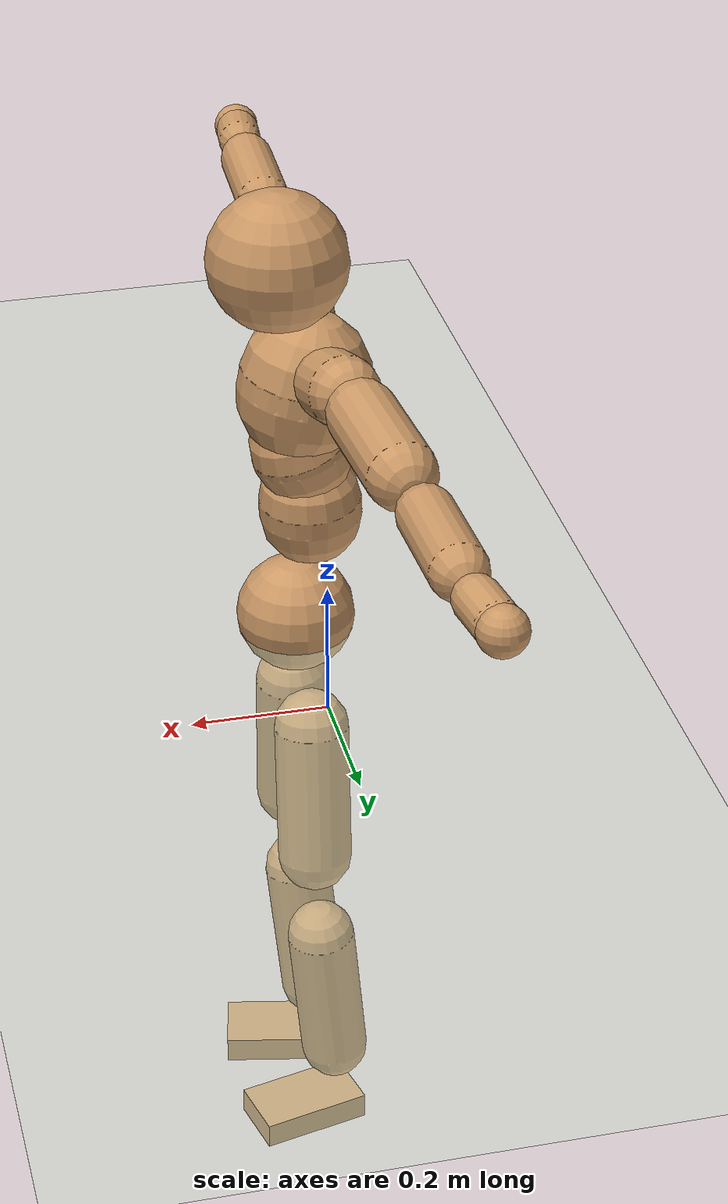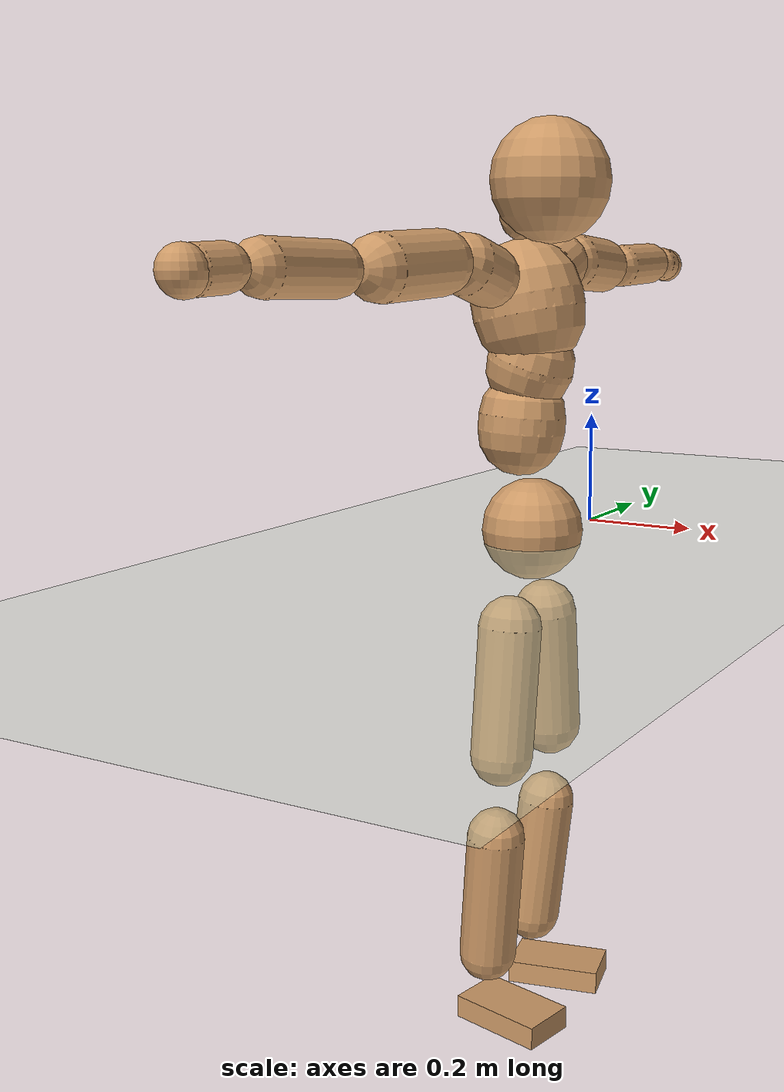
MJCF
<mujoco model="humanoid">
  <compiler coordinate="local"/>
  <default>
    <joint damping="0.0" armature="0.01" stiffness="0.0" limited="true"/>
    <geom conaffinity="1" condim="3" contype="7" margin="0.001" rgba="0.8 0.6 .4 1"/>
  </default>
  <asset>
    <texture type="skybox" builtin="gradient" rgb1=".4 .5 .6" rgb2="0 0 0" width="100" height="100"/>
    <texture builtin="flat" height="1278" mark="cross" markrgb="1 1 1" name="texgeom" random="0.01" rgb1="0.8 0.6 0.4" rgb2="0.8 0.6 0.4" type="cube" width="127"/>
    <texture builtin="checker" height="100" name="texplane" rgb1="0 0 0" rgb2="0.8 0.8 0.8" type="2d" width="100"/>
    <material name="MatPlane" reflectance="0.5" shininess="1" specular="1" texrepeat="60 60" texture="texplane"/>
    <material name="geom" texture="texgeom" texuniform="true"/>
  </asset>
  <worldbody>
    <light cutoff="100" diffuse="1 1 1" dir="-0 0 -1.3" directional="true" exponent="1" pos="0 0 1.3" specular=".1 .1 .1"/>
    <geom conaffinity="1" condim="3" name="floor" pos="0 0 0" rgba="0.8 0.9 0.8 1" size="100 100 .2" type="plane" material="MatPlane"/>
    <body name="Pelvis" pos="-0.0039 -0.2325 0.0214">
      <freejoint name="Pelvis"/>
      <geom type="sphere" contype="1" conaffinity="1" density="500" size="0.0894" pos="0.0000 0.0000 0.0000" name="Pelvis"/>
      <body name="L_Hip" pos="-0.0084 0.0605 -0.0899">
        <joint name="L_Hip_x" type="hinge" pos="0 0 0" axis="1 0 0" stiffness="800" damping="80" armature="0.02" range="-180.0000 180.0000"/>
        <joint name="L_Hip_y" type="hinge" pos="0 0 0" axis="0 1 0" stiffness="800" damping="80" armature="0.02" range="-180.0000 180.0000"/>
        <joint name="L_Hip_z" type="hinge" pos="0 0 0" axis="0 0 1" stiffness="800" damping="80" armature="0.02" range="-180.0000 180.0000"/>
        <geom type="capsule" contype="1" conaffinity="1" density="500" fromto="0.0002 0.0077 -0.0750 0.0008 0.0306 -0.3000" size="0.0571" name="L_Hip"/>
        <body name="L_Knee" pos="0.0009 0.0383 -0.375">
          <joint name="L_Knee_x" type="hinge" pos="0 0 0" axis="1 0 0" stiffness="800" damping="80" armature="0.02" range="-180.0000 180.0000"/>
          <joint name="L_Knee_y" type="hinge" pos="0 0 0" axis="0 1 0" stiffness="800" damping="80" armature="0.02" range="-180.0000 180.0000"/>
          <joint name="L_Knee_z" type="hinge" pos="0 0 0" axis="0 0 1" stiffness="800" damping="80" armature="0.02" range="-180.0000 180.0000"/>
          <geom type="capsule" contype="1" conaffinity="1" density="500" fromto="-0.0080 -0.0032 -0.0797 -0.0320 -0.0129 -0.3189" size="0.0522" name="L_Knee"/>
          <body name="L_Ankle" pos="-0.04 -0.0161 -0.3986">
            <joint name="L_Ankle_x" type="hinge" pos="0 0 0" axis="1 0 0" stiffness="800" damping="80" armature="0.02" range="-180.0000 180.0000"/>
            <joint name="L_Ankle_y" type="hinge" pos="0 0 0" axis="0 1 0" stiffness="800" damping="80" armature="0.02" range="-180.0000 180.0000"/>
            <joint name="L_Ankle_z" type="hinge" pos="0 0 0" axis="0 0 1" stiffness="800" damping="80" armature="0.02" range="-180.0000 180.0000"/>
            <geom type="box" contype="1" conaffinity="1" density="500" pos="0.0610 0.0139 -0.0274" size="0.0862 0.0495 0.021" quat="0.9937 0.0000 0.0000 0.1120" name="L_Ankle"/>
            <body name="L_Toe" pos="0.122 0.0279 -0.0548">
              <joint name="L_Toe_x" type="hinge" pos="0 0 0" axis="1 0 0" stiffness="500" damping="50" armature="0.02" range="-180.0000 180.0000"/>
              <joint name="L_Toe_y" type="hinge" pos="0 0 0" axis="0 1 0" stiffness="500" damping="50" armature="0.02" range="-180.0000 180.0000"/>
              <joint name="L_Toe_z" type="hinge" pos="0 0 0" axis="0 0 1" stiffness="500" damping="50" armature="0.02" range="-180.0000 180.0000"/>
              <geom type="box" contype="1" conaffinity="1" density="500" pos="0.0000 0.0000 0.0268" size="0.001 0.0024 0.001" quat="0.9930 0.0000 0.0000 0.1179" name="L_Toe"/>
            </body>
          </body>
        </body>
      </body>
      <body name="R_Hip" pos="-0.0068 -0.0595 -0.0886">
        <joint name="R_Hip_x" type="hinge" pos="0 0 0" axis="1 0 0" stiffness="800" damping="80" armature="0.02" range="-180.0000 180.0000"/>
        <joint name="R_Hip_y" type="hinge" pos="0 0 0" axis="0 1 0" stiffness="800" damping="80" armature="0.02" range="-180.0000 180.0000"/>
        <joint name="R_Hip_z" type="hinge" pos="0 0 0" axis="0 0 1" stiffness="800" damping="80" armature="0.02" range="-180.0000 180.0000"/>
        <geom type="capsule" contype="1" conaffinity="1" density="500" fromto="-0.0012 -0.0079 -0.0766 -0.0047 -0.0317 -0.3065" size="0.056" name="R_Hip"/>
        <body name="R_Knee" pos="-0.0059 -0.0396 -0.3831">
          <joint name="R_Knee_x" type="hinge" pos="0 0 0" axis="1 0 0" stiffness="800" damping="80" armature="0.02" range="-180.0000 180.0000"/>
          <joint name="R_Knee_y" type="hinge" pos="0 0 0" axis="0 1 0" stiffness="800" damping="80" armature="0.02" range="-180.0000 180.0000"/>
          <joint name="R_Knee_z" type="hinge" pos="0 0 0" axis="0 0 1" stiffness="800" damping="80" armature="0.02" range="-180.0000 180.0000"/>
          <geom type="capsule" contype="1" conaffinity="1" density="500" fromto="-0.0077 0.0036 -0.0797 -0.0310 0.0144 -0.3188" size="0.0523" name="R_Knee"/>
          <body name="R_Ankle" pos="-0.0387 0.018 -0.3985">
            <joint name="R_Ankle_x" type="hinge" pos="0 0 0" axis="1 0 0" stiffness="800" damping="80" armature="0.02" range="-180.0000 180.0000"/>
            <joint name="R_Ankle_y" type="hinge" pos="0 0 0" axis="0 1 0" stiffness="800" damping="80" armature="0.02" range="-180.0000 180.0000"/>
            <joint name="R_Ankle_z" type="hinge" pos="0 0 0" axis="0 0 1" stiffness="800" damping="80" armature="0.02" range="-180.0000 180.0000"/>
            <geom type="box" contype="1" conaffinity="1" density="500" pos="0.0633 -0.0130 -0.0239" size="0.0886 0.0501 0.021" quat="0.9949 0.0000 0.0000 -0.1012" name="R_Ankle"/>
            <body name="R_Toe" pos="0.1266 -0.026 -0.0479">
              <joint name="R_Toe_x" type="hinge" pos="0 0 0" axis="1 0 0" stiffness="500" damping="50" armature="0.02" range="-180.0000 180.0000"/>
              <joint name="R_Toe_y" type="hinge" pos="0 0 0" axis="0 1 0" stiffness="500" damping="50" armature="0.02" range="-180.0000 180.0000"/>
              <joint name="R_Toe_z" type="hinge" pos="0 0 0" axis="0 0 1" stiffness="500" damping="50" armature="0.02" range="-180.0000 180.0000"/>
              <geom type="box" contype="1" conaffinity="1" density="500" pos="0.0000 0.0000 0.0243" size="0.0011 0.0025 0.0011" quat="0.9957 0.0000 0.0000 -0.0922" name="R_Toe"/>
            </body>
          </body>
        </body>
      </body>
      <body name="Torso" pos="-0.0268 -0.0027 0.1113">
        <joint name="Torso_x" type="hinge" pos="0 0 0" axis="1 0 0" stiffness="1000" damping="100" armature="0.02" range="-180.0000 180.0000"/>
        <joint name="Torso_y" type="hinge" pos="0 0 0" axis="0 1 0" stiffness="1000" damping="100" armature="0.02" range="-180.0000 180.0000"/>
        <joint name="Torso_z" type="hinge" pos="0 0 0" axis="0 0 1" stiffness="1000" damping="100" armature="0.02" range="-180.0000 180.0000"/>
        <geom type="capsule" contype="1" conaffinity="1" density="500" fromto="0.0045 0.0051 0.0863 0.0030 0.0034 0.0575" size="0.076" name="Torso"/>
        <body name="Spine" pos="0.0075 0.0085 0.1438">
          <joint name="Spine_x" type="hinge" pos="0 0 0" axis="1 0 0" stiffness="1000" damping="100" armature="0.02" range="-180.0000 180.0000"/>
          <joint name="Spine_y" type="hinge" pos="0 0 0" axis="0 1 0" stiffness="1000" damping="100" armature="0.02" range="-180.0000 180.0000"/>
          <joint name="Spine_z" type="hinge" pos="0 0 0" axis="0 0 1" stiffness="1000" damping="100" armature="0.02" range="-180.0000 180.0000"/>
          <geom type="capsule" contype="1" conaffinity="1" density="500" fromto="0.0120 0.0006 0.0340 0.0080 0.0004 0.0227" size="0.0754" name="Spine"/>
          <body name="Chest" pos="0.02 0.0011 0.0567">
            <joint name="Chest_x" type="hinge" pos="0 0 0" axis="1 0 0" stiffness="1000" damping="100" armature="0.02" range="-180.0000 180.0000"/>
            <joint name="Chest_y" type="hinge" pos="0 0 0" axis="0 1 0" stiffness="1000" damping="100" armature="0.02" range="-180.0000 180.0000"/>
            <joint name="Chest_z" type="hinge" pos="0 0 0" axis="0 0 1" stiffness="1000" damping="100" armature="0.02" range="-180.0000 180.0000"/>
            <geom type="capsule" contype="1" conaffinity="1" density="500" fromto="-0.0177 -0.0017 0.0893 -0.0118 -0.0012 0.0595" size="0.097" name="Chest"/>
            <body name="Neck" pos="-0.0288 -0.0042 0.2095">
              <joint name="Neck_x" type="hinge" pos="0 0 0" axis="1 0 0" stiffness="500" damping="50" armature="0.02" range="-180.0000 180.0000"/>
              <joint name="Neck_y" type="hinge" pos="0 0 0" axis="0 1 0" stiffness="500" damping="50" armature="0.02" range="-180.0000 180.0000"/>
              <joint name="Neck_z" type="hinge" pos="0 0 0" axis="0 0 1" stiffness="500" damping="50" armature="0.02" range="-180.0000 180.0000"/>
              <geom type="capsule" contype="1" conaffinity="1" density="500" fromto="0.0105 0.0015 0.0136 0.0419 0.0061 0.0545" size="0.0458" name="Neck"/>
              <body name="Head" pos="0.0524 0.0077 0.0681">
                <joint name="Head_x" type="hinge" pos="0 0 0" axis="1 0 0" stiffness="500" damping="50" armature="0.02" range="-180.0000 180.0000"/>
                <joint name="Head_y" type="hinge" pos="0 0 0" axis="0 1 0" stiffness="500" damping="50" armature="0.02" range="-180.0000 180.0000"/>
                <joint name="Head_z" type="hinge" pos="0 0 0" axis="0 0 1" stiffness="500" damping="50" armature="0.02" range="-180.0000 180.0000"/>
                <geom type="sphere" contype="1" conaffinity="1" density="500" size="0.1029" pos="0.0000 0.0000 0.0000" name="Head"/>
              </body>
            </body>
            <body name="L_Thorax" pos="-0.0282 0.081 0.1205">
              <joint name="L_Thorax_x" type="hinge" pos="0 0 0" axis="1 0 0" stiffness="500" damping="50" armature="0.02" range="-180.0000 180.0000"/>
              <joint name="L_Thorax_y" type="hinge" pos="0 0 0" axis="0 1 0" stiffness="500" damping="50" armature="0.02" range="-180.0000 180.0000"/>
              <joint name="L_Thorax_z" type="hinge" pos="0 0 0" axis="0 0 1" stiffness="500" damping="50" armature="0.02" range="-180.0000 180.0000"/>
              <geom type="capsule" contype="1" conaffinity="1" density="500" fromto="-0.0021 0.0194 0.0055 -0.0083 0.0776 0.0221" size="0.0526" name="L_Thorax"/>
              <body name="L_Shoulder" pos="-0.0104 0.097 0.0276">
                <joint name="L_Shoulder_x" type="hinge" pos="0 0 0" axis="1 0 0" stiffness="500" damping="50" armature="0.02" range="-720.0000 720.0000"/>
                <joint name="L_Shoulder_y" type="hinge" pos="0 0 0" axis="0 1 0" stiffness="500" damping="50" armature="0.02" range="-720.0000 720.0000"/>
                <joint name="L_Shoulder_z" type="hinge" pos="0 0 0" axis="0 0 1" stiffness="500" damping="50" armature="0.02" range="-720.0000 720.0000"/>
                <geom type="capsule" contype="1" conaffinity="1" density="500" fromto="-0.0051 0.0531 -0.0026 -0.0205 0.2124 -0.0106" size="0.0507" name="L_Shoulder"/>
                <body name="L_Elbow" pos="-0.0256 0.2655 -0.0132">
                  <joint name="L_Elbow_x" type="hinge" pos="0 0 0" axis="1 0 0" stiffness="500" damping="50" armature="0.02" range="-720.0000 720.0000"/>
                  <joint name="L_Elbow_y" type="hinge" pos="0 0 0" axis="0 1 0" stiffness="500" damping="50" armature="0.02" range="-720.0000 720.0000"/>
                  <joint name="L_Elbow_z" type="hinge" pos="0 0 0" axis="0 0 1" stiffness="500" damping="50" armature="0.02" range="-720.0000 720.0000"/>
                  <geom type="capsule" contype="1" conaffinity="1" density="500" fromto="-0.0008 0.0514 0.0016 -0.0032 0.2056 0.0064" size="0.0408" name="L_Elbow"/>
                  <body name="L_Wrist" pos="-0.004 0.257 0.008">
                    <joint name="L_Wrist_x" type="hinge" pos="0 0 0" axis="1 0 0" stiffness="300" damping="30" armature="0.02" range="-180.0000 180.0000"/>
                    <joint name="L_Wrist_y" type="hinge" pos="0 0 0" axis="0 1 0" stiffness="300" damping="30" armature="0.02" range="-180.0000 180.0000"/>
                    <joint name="L_Wrist_z" type="hinge" pos="0 0 0" axis="0 0 1" stiffness="300" damping="30" armature="0.02" range="-180.0000 180.0000"/>
                    <geom type="capsule" contype="1" conaffinity="1" density="500" fromto="-0.0034 0.0175 -0.0012 -0.0135 0.0700 -0.0047" size="0.0331" name="L_Wrist"/>
                    <body name="L_Hand" pos="-0.0169 0.0874 -0.0059">
                      <joint name="L_Hand_x" type="hinge" pos="0 0 0" axis="1 0 0" stiffness="300" damping="30" armature="0.02" range="-180.0000 180.0000"/>
                      <joint name="L_Hand_y" type="hinge" pos="0 0 0" axis="0 1 0" stiffness="300" damping="30" armature="0.02" range="-180.0000 180.0000"/>
                      <joint name="L_Hand_z" type="hinge" pos="0 0 0" axis="0 0 1" stiffness="300" damping="30" armature="0.02" range="-180.0000 180.0000"/>
                      <geom type="sphere" contype="1" conaffinity="1" density="500" size="0.0348" pos="0.0000 0.0000 0.0000" name="L_Hand"/>
                    </body>
                  </body>
                </body>
              </body>
            </body>
            <body name="R_Thorax" pos="-0.0316 -0.0856 0.1165">
              <joint name="R_Thorax_x" type="hinge" pos="0 0 0" axis="1 0 0" stiffness="500" damping="50" armature="0.02" range="-180.0000 180.0000"/>
              <joint name="R_Thorax_y" type="hinge" pos="0 0 0" axis="0 1 0" stiffness="500" damping="50" armature="0.02" range="-180.0000 180.0000"/>
              <joint name="R_Thorax_z" type="hinge" pos="0 0 0" axis="0 0 1" stiffness="500" damping="50" armature="0.02" range="-180.0000 180.0000"/>
              <geom type="capsule" contype="1" conaffinity="1" density="500" fromto="-0.0017 -0.0206 0.0061 -0.0067 -0.0826 0.0246" size="0.0518" name="R_Thorax"/>
              <body name="R_Shoulder" pos="-0.0083 -0.1032 0.0307">
                <joint name="R_Shoulder_x" type="hinge" pos="0 0 0" axis="1 0 0" stiffness="500" damping="50" armature="0.02" range="-720.0000 720.0000"/>
                <joint name="R_Shoulder_y" type="hinge" pos="0 0 0" axis="0 1 0" stiffness="500" damping="50" armature="0.02" range="-720.0000 720.0000"/>
                <joint name="R_Shoulder_z" type="hinge" pos="0 0 0" axis="0 0 1" stiffness="500" damping="50" armature="0.02" range="-720.0000 720.0000"/>
                <geom type="capsule" contype="1" conaffinity="1" density="500" fromto="-0.0041 -0.0514 -0.0025 -0.0164 -0.2056 -0.0100" size="0.0523" name="R_Shoulder"/>
                <body name="R_Elbow" pos="-0.0205 -0.257 -0.0124">
                  <joint name="R_Elbow_x" type="hinge" pos="0 0 0" axis="1 0 0" stiffness="500" damping="50" armature="0.02" range="-720.0000 720.0000"/>
                  <joint name="R_Elbow_y" type="hinge" pos="0 0 0" axis="0 1 0" stiffness="500" damping="50" armature="0.02" range="-720.0000 720.0000"/>
                  <joint name="R_Elbow_z" type="hinge" pos="0 0 0" axis="0 0 1" stiffness="500" damping="50" armature="0.02" range="-720.0000 720.0000"/>
                  <geom type="capsule" contype="1" conaffinity="1" density="500" fromto="-0.0018 -0.0523 0.0011 -0.0073 -0.2094 0.0045" size="0.0415" name="R_Elbow"/>
                  <body name="R_Wrist" pos="-0.0092 -0.2617 0.0057">
                    <joint name="R_Wrist_x" type="hinge" pos="0 0 0" axis="1 0 0" stiffness="300" damping="30" armature="0.02" range="-180.0000 180.0000"/>
                    <joint name="R_Wrist_y" type="hinge" pos="0 0 0" axis="0 1 0" stiffness="300" damping="30" armature="0.02" range="-180.0000 180.0000"/>
                    <joint name="R_Wrist_z" type="hinge" pos="0 0 0" axis="0 0 1" stiffness="300" damping="30" armature="0.02" range="-180.0000 180.0000"/>
                    <geom type="capsule" contype="1" conaffinity="1" density="500" fromto="-0.0020 -0.0176 -0.0009 -0.0079 -0.0702 -0.0035" size="0.0339" name="R_Wrist"/>
                    <body name="R_Hand" pos="-0.0098 -0.0878 -0.0044">
                      <joint name="R_Hand_x" type="hinge" pos="0 0 0" axis="1 0 0" stiffness="300" damping="30" armature="0.02" range="-180.0000 180.0000"/>
                      <joint name="R_Hand_y" type="hinge" pos="0 0 0" axis="0 1 0" stiffness="300" damping="30" armature="0.02" range="-180.0000 180.0000"/>
                      <joint name="R_Hand_z" type="hinge" pos="0 0 0" axis="0 0 1" stiffness="300" damping="30" armature="0.02" range="-180.0000 180.0000"/>
                      <geom type="sphere" contype="1" conaffinity="1" density="500" size="0.0353" pos="0.0000 0.0000 0.0000" name="R_Hand"/>
                    </body>
                  </body>
                </body>
              </body>
            </body>
          </body>
        </body>
      </body>
    </body>
  </worldbody>
  <actuator>
    <motor name="L_Hip_x" joint="L_Hip_x" gear="500"/>
    <motor name="L_Hip_y" joint="L_Hip_y" gear="500"/>
    <motor name="L_Hip_z" joint="L_Hip_z" gear="500"/>
    <motor name="L_Knee_x" joint="L_Knee_x" gear="500"/>
    <motor name="L_Knee_y" joint="L_Knee_y" gear="500"/>
    <motor name="L_Knee_z" joint="L_Knee_z" gear="500"/>
    <motor name="L_Ankle_x" joint="L_Ankle_x" gear="500"/>
    <motor name="L_Ankle_y" joint="L_Ankle_y" gear="500"/>
    <motor name="L_Ankle_z" joint="L_Ankle_z" gear="500"/>
    <motor name="L_Toe_x" joint="L_Toe_x" gear="500"/>
    <motor name="L_Toe_y" joint="L_Toe_y" gear="500"/>
    <motor name="L_Toe_z" joint="L_Toe_z" gear="500"/>
    <motor name="R_Hip_x" joint="R_Hip_x" gear="500"/>
    <motor name="R_Hip_y" joint="R_Hip_y" gear="500"/>
    <motor name="R_Hip_z" joint="R_Hip_z" gear="500"/>
    <motor name="R_Knee_x" joint="R_Knee_x" gear="500"/>
    <motor name="R_Knee_y" joint="R_Knee_y" gear="500"/>
    <motor name="R_Knee_z" joint="R_Knee_z" gear="500"/>
    <motor name="R_Ankle_x" joint="R_Ankle_x" gear="500"/>
    <motor name="R_Ankle_y" joint="R_Ankle_y" gear="500"/>
    <motor name="R_Ankle_z" joint="R_Ankle_z" gear="500"/>
    <motor name="R_Toe_x" joint="R_Toe_x" gear="500"/>
    <motor name="R_Toe_y" joint="R_Toe_y" gear="500"/>
    <motor name="R_Toe_z" joint="R_Toe_z" gear="500"/>
    <motor name="Torso_x" joint="Torso_x" gear="500"/>
    <motor name="Torso_y" joint="Torso_y" gear="500"/>
    <motor name="Torso_z" joint="Torso_z" gear="500"/>
    <motor name="Spine_x" joint="Spine_x" gear="500"/>
    <motor name="Spine_y" joint="Spine_y" gear="500"/>
    <motor name="Spine_z" joint="Spine_z" gear="500"/>
    <motor name="Chest_x" joint="Chest_x" gear="500"/>
    <motor name="Chest_y" joint="Chest_y" gear="500"/>
    <motor name="Chest_z" joint="Chest_z" gear="500"/>
    <motor name="Neck_x" joint="Neck_x" gear="500"/>
    <motor name="Neck_y" joint="Neck_y" gear="500"/>
    <motor name="Neck_z" joint="Neck_z" gear="500"/>
    <motor name="Head_x" joint="Head_x" gear="500"/>
    <motor name="Head_y" joint="Head_y" gear="500"/>
    <motor name="Head_z" joint="Head_z" gear="500"/>
    <motor name="L_Thorax_x" joint="L_Thorax_x" gear="500"/>
    <motor name="L_Thorax_y" joint="L_Thorax_y" gear="500"/>
    <motor name="L_Thorax_z" joint="L_Thorax_z" gear="500"/>
    <motor name="L_Shoulder_x" joint="L_Shoulder_x" gear="500"/>
    <motor name="L_Shoulder_y" joint="L_Shoulder_y" gear="500"/>
    <motor name="L_Shoulder_z" joint="L_Shoulder_z" gear="500"/>
    <motor name="L_Elbow_x" joint="L_Elbow_x" gear="500"/>
    <motor name="L_Elbow_y" joint="L_Elbow_y" gear="500"/>
    <motor name="L_Elbow_z" joint="L_Elbow_z" gear="500"/>
    <motor name="L_Wrist_x" joint="L_Wrist_x" gear="500"/>
    <motor name="L_Wrist_y" joint="L_Wrist_y" gear="500"/>
    <motor name="L_Wrist_z" joint="L_Wrist_z" gear="500"/>
    <motor name="L_Hand_x" joint="L_Hand_x" gear="500"/>
    <motor name="L_Hand_y" joint="L_Hand_y" gear="500"/>
    <motor name="L_Hand_z" joint="L_Hand_z" gear="500"/>
    <motor name="R_Thorax_x" joint="R_Thorax_x" gear="500"/>
    <motor name="R_Thorax_y" joint="R_Thorax_y" gear="500"/>
    <motor name="R_Thorax_z" joint="R_Thorax_z" gear="500"/>
    <motor name="R_Shoulder_x" joint="R_Shoulder_x" gear="500"/>
    <motor name="R_Shoulder_y" joint="R_Shoulder_y" gear="500"/>
    <motor name="R_Shoulder_z" joint="R_Shoulder_z" gear="500"/>
    <motor name="R_Elbow_x" joint="R_Elbow_x" gear="500"/>
    <motor name="R_Elbow_y" joint="R_Elbow_y" gear="500"/>
    <motor name="R_Elbow_z" joint="R_Elbow_z" gear="500"/>
    <motor name="R_Wrist_x" joint="R_Wrist_x" gear="500"/>
    <motor name="R_Wrist_y" joint="R_Wrist_y" gear="500"/>
    <motor name="R_Wrist_z" joint="R_Wrist_z" gear="500"/>
    <motor name="R_Hand_x" joint="R_Hand_x" gear="500"/>
    <motor name="R_Hand_y" joint="R_Hand_y" gear="500"/>
    <motor name="R_Hand_z" joint="R_Hand_z" gear="500"/>
  </actuator>
  <contact>
    <exclude body1="Torso" body2="Chest"/>
    <exclude body1="Head" body2="Chest"/>
    <exclude body1="R_Knee" body2="R_Toe"/>
    <exclude body1="R_Knee" body2="L_Ankle"/>
    <exclude body1="R_Knee" body2="L_Toe"/>
    <exclude body1="L_Knee" body2="L_Toe"/>
    <exclude body1="L_Knee" body2="R_Ankle"/>
    <exclude body1="L_Knee" body2="R_Toe"/>
    <exclude body1="L_Shoulder" body2="Chest"/>
    <exclude body1="R_Shoulder" body2="Chest"/>
  </contact>
  <sensor/>
  <size njmax="700" nconmax="700"/>
</mujoco>
